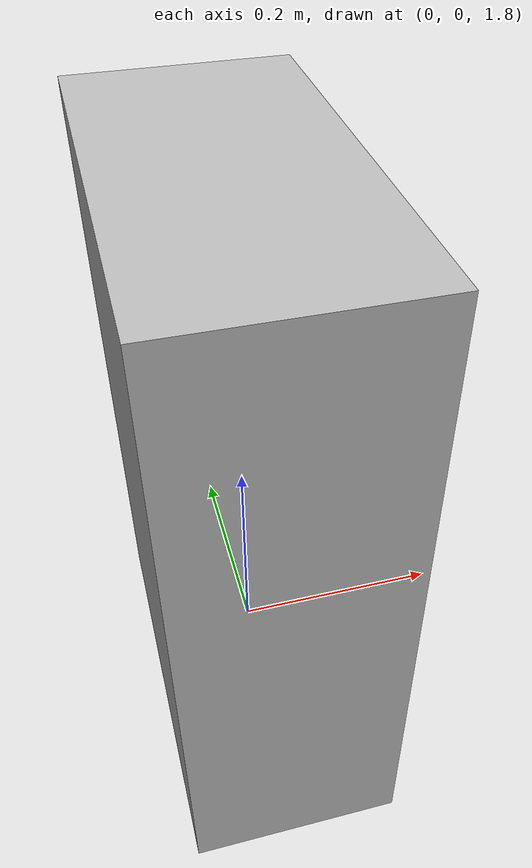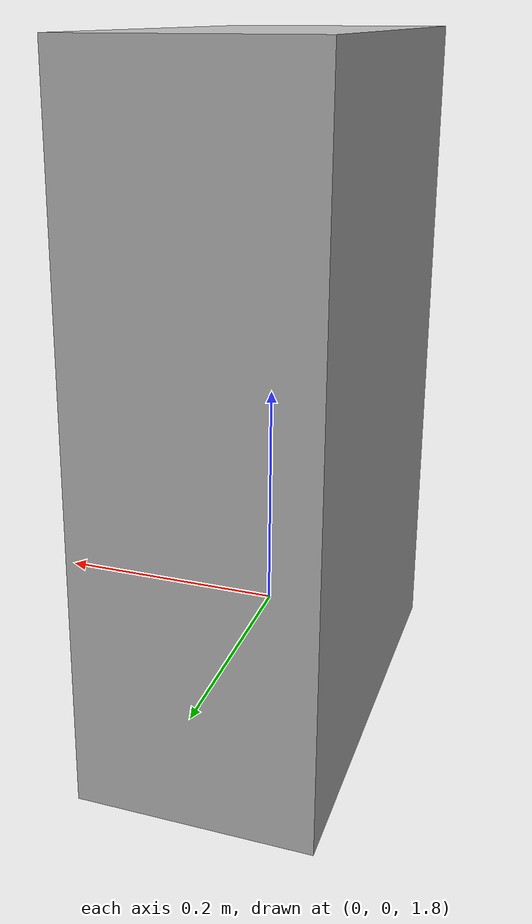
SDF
<?xml version="1.0" ?>
<sdf version="1.4">
    <world name="default">
        <scene>
            <ambient>1.0 1.0 1.0 1</ambient>
            <background>0 0 0 1.0</background>
            <shadows>true</shadows>
        </scene>
        <physics type="ode">
            <gravity>0 0 -10.0</gravity>
            <ode>
                <solver>
                    <type>quick</type>
                    <dt>0.001</dt>
                    <iters>10</iters>
                    <sor>1.3</sor>
                </solver>
                <constraints>
                    <cfm>0.0</cfm>
                    <erp>0.2</erp>
                    <contact_max_correcting_vel>100.0</contact_max_correcting_vel>
                    <contact_surface_layer>0.0</contact_surface_layer>
                </constraints>
            </ode>
        </physics>
        <!-- 25.3kg total mass -->
        <model name="test_model">
            <pose>0 0 4 0 0 0</pose>
            <link name="link1">
                <pose>0 0 -2 0 0 0</pose>
                <inertial>
                    <inertia>
                        <ixx>1</ixx>
                        <ixy>0</ixy>
                        <ixz>0</ixz>
                        <iyy>1</iyy>
                        <iyz>0</iyz>
                        <izz>1</izz>
                    </inertia>
                    <mass>1.0</mass>
                </inertial>
                <visual name="visual">
                    <pose>0 0 0 0 0 0</pose>
                    <geometry>
                        <box>
                            <size>0.2 0.4 0.6</size>
                        </box>
                    </geometry>
                    <material>
                        <script>Gazebo/WoodPallet</script>
                    </material>
                </visual>
            </link>
            <joint name="joint01" type="revolute">
                <pose>0 -0.5 0 0 0 0</pose>
                <parent>world</parent>
                <child>link1</child>
                <axis>
                    <xyz>1 0 0</xyz>
                </axis>
            </joint>
        </model>
        <light type="directional" name="sun">
            <pose>0 0 10 0 0 0</pose>
            <diffuse>.8 .8 .8 1</diffuse>
            <specular>.1 .1 .1 1</specular>
            <attenuation>
                <range>10</range>
                <linear>0.01</linear>
                <constant>0.8</constant>
                <quadratic>0.0</quadratic>
            </attenuation>
            <direction>0 .5 -.5</direction>
            <cast_shadows>true</cast_shadows>
        </light>
    </world>
</sdf>
